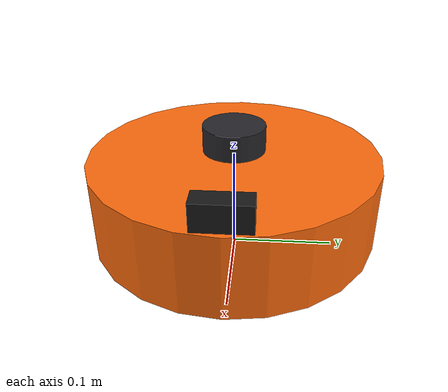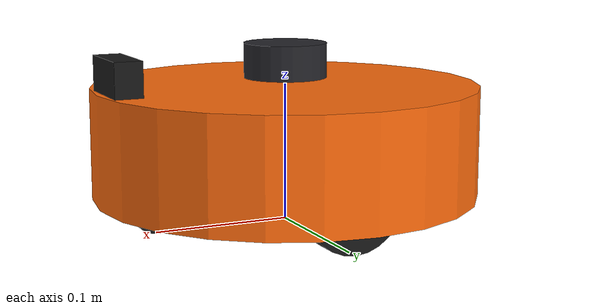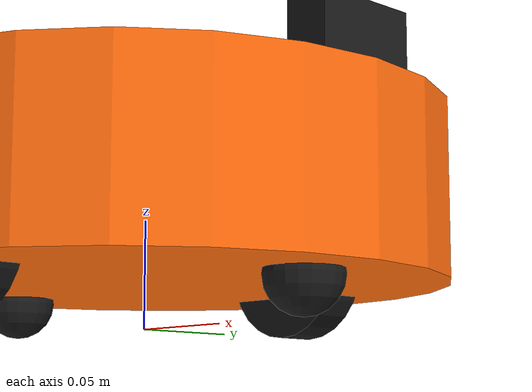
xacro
<?xml version="1.0"?>
<robot name="mazemind" xmlns:xacro="http://www.ros.org/wiki/xacro">

  <xacro:property name="PI" value="3.141592653589793"/>
  <xacro:property name="base_radius" value="0.14"/>
  <xacro:property name="base_height" value="0.08"/>
  <xacro:property name="base_mass" value="2.0"/>
  <xacro:property name="wheel_radius" value="0.035"/>
  <xacro:property name="wheel_width" value="0.02"/>
  <xacro:property name="wheel_mass" value="0.1"/>
  <xacro:property name="wheel_separation" value="0.20"/>
  <xacro:property name="caster_radius" value="0.0175"/>
  <xacro:property name="caster_x" value="0.10"/>
  <!-- base_link origin sits at axle height; chassis centre is raised above it -->
  <xacro:property name="chassis_z" value="0.025"/>
  <xacro:property name="lidar_z" value="0.0825"/>
  <xacro:property name="camera_x" value="0.125"/>
  <xacro:property name="camera_z" value="0.075"/>

  <xacro:macro name="cylinder_inertia" params="m r h">
    <inertia ixx="${m*(3*r*r+h*h)/12}" ixy="0" ixz="0"
             iyy="${m*(3*r*r+h*h)/12}" iyz="0" izz="${m*r*r/2}"/>
  </xacro:macro>
  <xacro:macro name="sphere_inertia" params="m r">
    <inertia ixx="${2*m*r*r/5}" ixy="0" ixz="0" iyy="${2*m*r*r/5}" iyz="0" izz="${2*m*r*r/5}"/>
  </xacro:macro>
  <xacro:macro name="box_inertia" params="m x y z">
    <inertia ixx="${m*(y*y+z*z)/12}" ixy="0" ixz="0" iyy="${m*(x*x+z*z)/12}" iyz="0" izz="${m*(x*x+y*y)/12}"/>
  </xacro:macro>

  <material name="body"><color rgba="1.0 0.42 0.05 1"/></material>
  <material name="dark"><color rgba="0.1 0.1 0.1 1"/></material>
  <material name="sensor"><color rgba="0.15 0.15 0.17 1"/></material>

  <!-- ============================================================ base -->
  <link name="base_footprint"/>

  <joint name="base_joint" type="fixed">
    <parent link="base_footprint"/>
    <child link="base_link"/>
    <origin xyz="0 0 ${wheel_radius}" rpy="0 0 0"/>
  </joint>

  <link name="base_link">
    <visual>
      <origin xyz="0 0 ${chassis_z}"/>
      <geometry><cylinder radius="${base_radius}" length="${base_height}"/></geometry>
      <material name="body"/>
    </visual>
    <collision name="chassis">
      <origin xyz="0 0 ${chassis_z}"/>
      <geometry><cylinder radius="${base_radius}" length="${base_height}"/></geometry>
    </collision>
    <inertial>
      <origin xyz="0 0 ${chassis_z}"/>
      <mass value="${base_mass}"/>
      <xacro:cylinder_inertia m="${base_mass}" r="${base_radius}" h="${base_height}"/>
    </inertial>
  </link>

  <!-- ============================================================ wheels -->
  <xacro:macro name="wheel" params="side y">
    <link name="${side}_wheel_link">
      <visual>
        <origin rpy="${PI/2} 0 0"/>
        <geometry><cylinder radius="${wheel_radius}" length="${wheel_width}"/></geometry>
        <material name="dark"/>
      </visual>
      <collision>
        <geometry><sphere radius="${wheel_radius}"/></geometry>
      </collision>
      <inertial>
        <origin rpy="${PI/2} 0 0"/>
        <mass value="${wheel_mass}"/>
        <xacro:cylinder_inertia m="${wheel_mass}" r="${wheel_radius}" h="${wheel_width}"/>
      </inertial>
    </link>
    <joint name="${side}_wheel_joint" type="continuous">
      <parent link="base_link"/>
      <child link="${side}_wheel_link"/>
      <origin xyz="0 ${y} 0"/>
      <axis xyz="0 1 0"/>
    </joint>
    <gazebo reference="${side}_wheel_link">
      <mu1>1.0</mu1>
      <mu2>1.0</mu2>
    </gazebo>
  </xacro:macro>

  <xacro:wheel side="left" y="${wheel_separation/2}"/>
  <xacro:wheel side="right" y="${-wheel_separation/2}"/>

  <!-- ============================================================ casters (frictionless spheres) -->
  <xacro:macro name="caster" params="name x">
    <link name="${name}_caster_link">
      <visual>
        <geometry><sphere radius="${caster_radius}"/></geometry>
        <material name="dark"/>
      </visual>
      <collision>
        <geometry><sphere radius="${caster_radius}"/></geometry>
      </collision>
      <inertial>
        <mass value="0.02"/>
        <xacro:sphere_inertia m="0.02" r="${caster_radius}"/>
      </inertial>
    </link>
    <joint name="${name}_caster_joint" type="fixed">
      <parent link="base_link"/>
      <child link="${name}_caster_link"/>
      <origin xyz="${x} 0 ${caster_radius - wheel_radius}"/>
    </joint>
    <gazebo reference="${name}_caster_link">
      <mu1>0.0</mu1>
      <mu2>0.0</mu2>
    </gazebo>
  </xacro:macro>

  <xacro:caster name="front" x="${caster_x}"/>
  <xacro:caster name="rear" x="${-caster_x}"/>

  <!-- ============================================================ LiDAR -->
  <link name="lidar_link">
    <visual>
      <geometry><cylinder radius="0.03" length="0.025"/></geometry>
      <material name="sensor"/>
    </visual>
    <inertial>
      <mass value="0.05"/>
      <xacro:cylinder_inertia m="0.05" r="0.03" h="0.025"/>
    </inertial>
  </link>
  <joint name="lidar_joint" type="fixed">
    <parent link="base_link"/>
    <child link="lidar_link"/>
    <origin xyz="0 0 ${lidar_z}"/>
  </joint>

  <!-- ============================================================ camera -->
  <link name="camera_link">
    <visual>
      <geometry><box size="0.02 0.05 0.03"/></geometry>
      <material name="dark"/>
    </visual>
    <inertial>
      <mass value="0.02"/>
      <xacro:box_inertia m="0.02" x="0.02" y="0.05" z="0.03"/>
    </inertial>
  </link>
  <joint name="camera_joint" type="fixed">
    <parent link="base_link"/>
    <child link="camera_link"/>
    <origin xyz="${camera_x} 0 ${camera_z}"/>
  </joint>
  <!-- REP-103 optical frame (z forward, x right, y down) for image consumers -->
  <link name="camera_optical_link"/>
  <joint name="camera_optical_joint" type="fixed">
    <parent link="camera_link"/>
    <child link="camera_optical_link"/>
    <origin xyz="0 0 0" rpy="${-PI/2} 0 ${-PI/2}"/>
  </joint>

  <!-- ============================================================ Gazebo sensors -->
  <gazebo reference="lidar_link">
    <sensor name="lidar" type="gpu_lidar">
      <topic>/scan</topic>
      <ignition_frame_id>lidar_link</ignition_frame_id>
      <update_rate>10</update_rate>
      <always_on>true</always_on>
      <visualize>false</visualize>
      <lidar>
        <scan>
          <horizontal>
            <samples>360</samples>
            <resolution>1</resolution>
            <min_angle>${-PI}</min_angle>
            <max_angle>${PI - 2*PI/360}</max_angle>
          </horizontal>
          <vertical><samples>1</samples><resolution>1</resolution><min_angle>0</min_angle><max_angle>0</max_angle></vertical>
        </scan>
        <range><min>0.12</min><max>8.0</max><resolution>0.01</resolution></range>
        <noise><type>gaussian</type><mean>0.0</mean><stddev>0.01</stddev></noise>
      </lidar>
    </sensor>
  </gazebo>

  <gazebo reference="camera_link">
    <sensor name="camera" type="camera">
      <topic>/camera/image_raw</topic>
      <ignition_frame_id>camera_optical_link</ignition_frame_id>
      <update_rate>10</update_rate>
      <always_on>true</always_on>
      <camera>
        <horizontal_fov>1.3</horizontal_fov>
        <image><width>320</width><height>240</height><format>R8G8B8</format></image>
        <clip><near>0.05</near><far>10.0</far></clip>
        <noise><type>gaussian</type><mean>0.0</mean><stddev>0.007</stddev></noise>
      </camera>
    </sensor>
  </gazebo>

  <!-- Contact sensor on the chassis: ground-truth collision counting for evaluation. -->
  <gazebo reference="base_link">
    <sensor name="bumper" type="contact">
      <always_on>true</always_on>
      <update_rate>50</update_rate>
      <topic>/ground_truth/contacts</topic>
      <contact>
        <!-- base_link is lumped into base_footprint by the URDF->SDF converter -->
        <collision>base_footprint_fixed_joint_lump__chassis_collision</collision>
        <topic>/ground_truth/contacts</topic>
      </contact>
    </sensor>
  </gazebo>

  <!-- ============================================================ Gazebo systems -->
  <gazebo>
    <plugin filename="ignition-gazebo-diff-drive-system" name="ignition::gazebo::systems::DiffDrive">
      <left_joint>left_wheel_joint</left_joint>
      <right_joint>right_wheel_joint</right_joint>
      <wheel_separation>${wheel_separation}</wheel_separation>
      <wheel_radius>${wheel_radius}</wheel_radius>
      <max_linear_acceleration>1.0</max_linear_acceleration>
      <min_linear_acceleration>-1.0</min_linear_acceleration>
      <max_angular_acceleration>3.0</max_angular_acceleration>
      <min_angular_acceleration>-3.0</min_angular_acceleration>
      <max_linear_velocity>0.5</max_linear_velocity>
      <min_linear_velocity>-0.5</min_linear_velocity>
      <max_angular_velocity>2.0</max_angular_velocity>
      <min_angular_velocity>-2.0</min_angular_velocity>
      <topic>/cmd_vel</topic>
      <odom_topic>/odom</odom_topic>
      <tf_topic>/tf</tf_topic>
      <frame_id>odom</frame_id>
      <child_frame_id>base_footprint</child_frame_id>
      <odom_publish_frequency>30</odom_publish_frequency>
    </plugin>

    <plugin filename="ignition-gazebo-joint-state-publisher-system"
            name="ignition::gazebo::systems::JointStatePublisher">
      <topic>/joint_states</topic>
      <joint_name>left_wheel_joint</joint_name>
      <joint_name>right_wheel_joint</joint_name>
    </plugin>

    <!-- True world pose of the robot. Bridged ONLY for the evaluator. -->
    <plugin filename="ignition-gazebo-odometry-publisher-system"
            name="ignition::gazebo::systems::OdometryPublisher">
      <odom_frame>world</odom_frame>
      <robot_base_frame>mazemind</robot_base_frame>
      <odom_topic>/ground_truth/odom</odom_topic>
      <tf_topic>/ground_truth/tf_unused</tf_topic>
      <odom_publish_frequency>20</odom_publish_frequency>
      <dimensions>2</dimensions>
    </plugin>
  </gazebo>
</robot>
